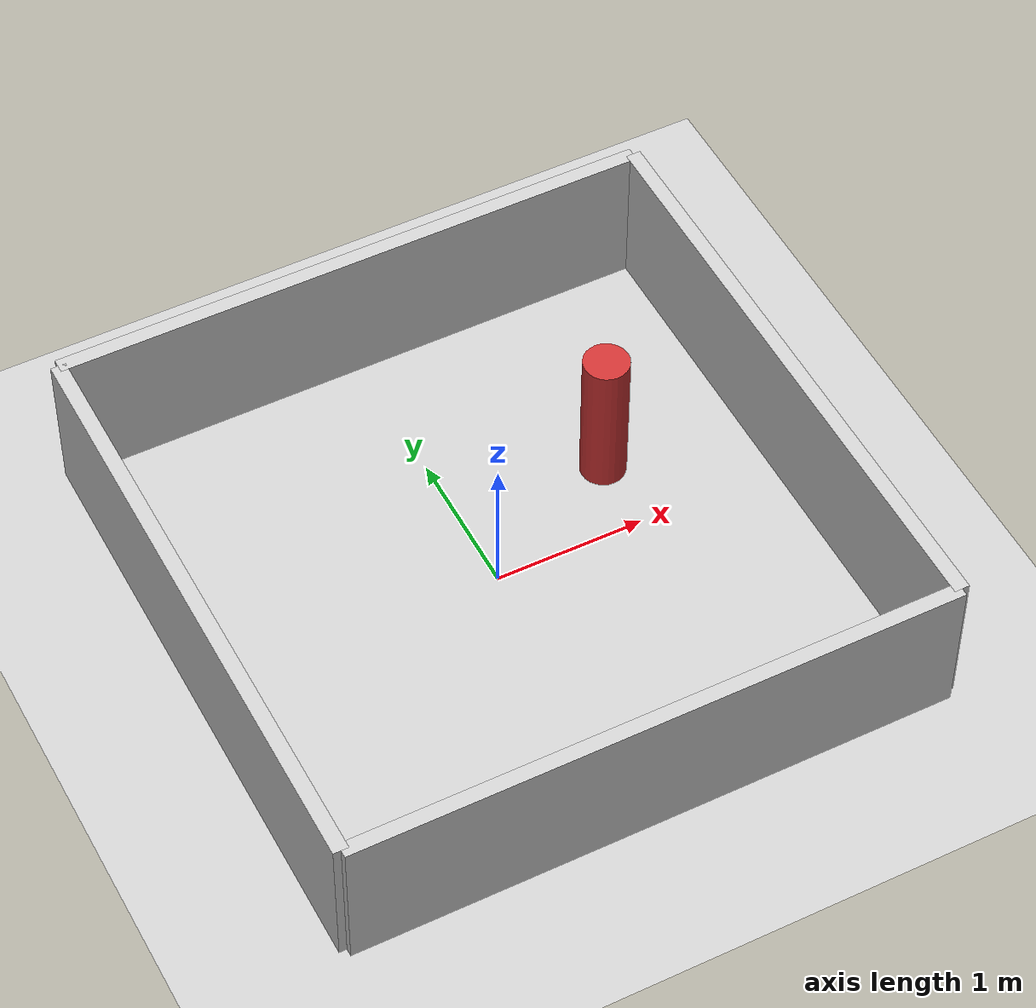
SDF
<?xml version="1.0" ?>

<sdf version="1.5">

  <world name="room">

    <!-- 조명 -->

    <include>

      <uri>model://sun</uri>

    </include>

    <!-- 바닥 -->

    <include>

      <uri>model://ground_plane</uri>

    </include>

    <!-- 전방 벽 (x=+2) -->

    <model name="wall_front">

      <static>true</static>

      <pose>2 0 0.5 0 0 0</pose>

      <link name="link">

        <collision name="collision">

          <geometry><box><size>0.1 4 1</size></box></geometry>

        </collision>

        <visual name="visual">

          <geometry><box><size>0.1 4 1</size></box></geometry>

          <material>

            <ambient>0.8 0.8 0.8 1</ambient>

          </material>

        </visual>

      </link>

    </model>

    <!-- 후방 벽 (x=-2) -->

    <model name="wall_back">

      <static>true</static>

      <pose>-2 0 0.5 0 0 0</pose>

      <link name="link">

        <collision name="collision">

          <geometry><box><size>0.1 4 1</size></box></geometry>

        </collision>

        <visual name="visual">

          <geometry><box><size>0.1 4 1</size></box></geometry>

          <material>

            <ambient>0.8 0.8 0.8 1</ambient>

          </material>

        </visual>

      </link>

    </model>

    <!-- 좌측 벽 (y=+2) -->

    <model name="wall_left">

      <static>true</static>

      <pose>0 2 0.5 0 0 0</pose>

      <link name="link">

        <collision name="collision">

          <geometry><box><size>4 0.1 1</size></box></geometry>

        </collision>

        <visual name="visual">

          <geometry><box><size>4 0.1 1</size></box></geometry>

          <material>

            <ambient>0.8 0.8 0.8 1</ambient>

          </material>

        </visual>

      </link>

    </model>

    <!-- 우측 벽 (y=-2) -->

    <model name="wall_right">

      <static>true</static>

      <pose>0 -2 0.5 0 0 0</pose>

      <link name="link">

        <collision name="collision">

          <geometry><box><size>4 0.1 1</size></box></geometry>

        </collision>

        <visual name="visual">

          <geometry><box><size>4 0.1 1</size></box></geometry>

          <material>

            <ambient>0.8 0.8 0.8 1</ambient>

          </material>

        </visual>

      </link>

    </model>

    <!-- 원기둥 장애물 -->

    <model name="obstacle_1">

      <static>true</static>

      <pose>1 0.5 0.5 0 0 0</pose>

      <link name="link">

        <collision name="collision">

          <geometry><cylinder><radius>0.15</radius><length>1</length></cylinder></geometry>

        </collision>

        <visual name="visual">

          <geometry><cylinder><radius>0.15</radius><length>1</length></cylinder></geometry>

          <material>

            <ambient>0.8 0.2 0.2 1</ambient>

          </material>

        </visual>

      </link>

    </model>

  </world>

</sdf>
